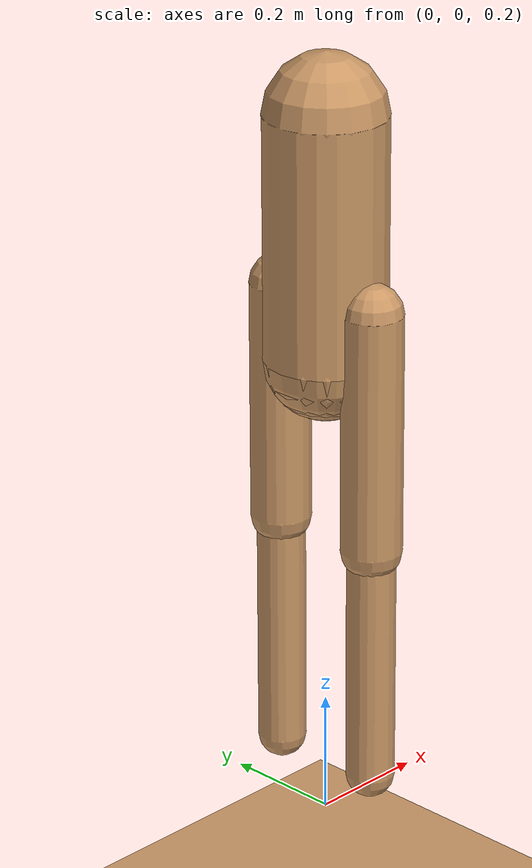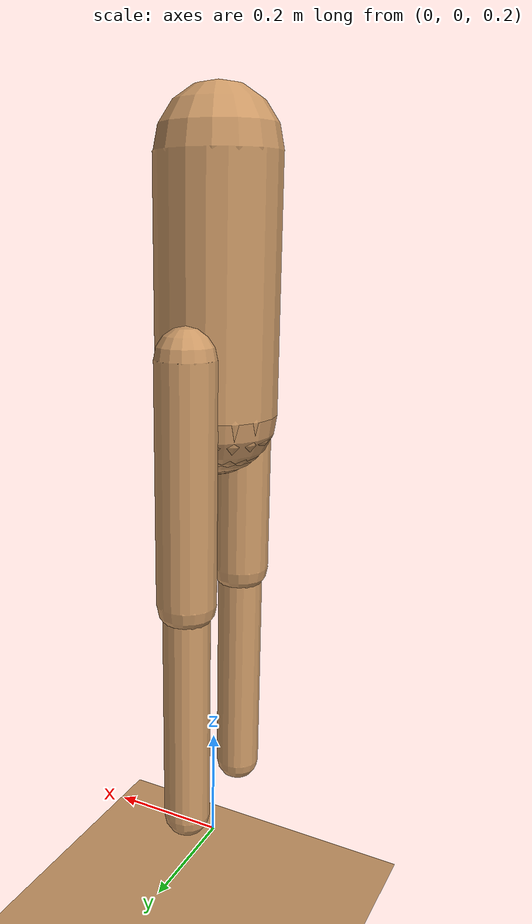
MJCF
<mujoco model="NeuralAtoms_75kg_Humanoid">
    <compiler angle="degree" coordinate="local" inertiafromgeom="true"/>
    <option integrator="RK4" timestep="0.01" gravity="0 0 -9.81"/>

    <default>
        <joint armature="1" damping="1" limited="true"/>
        <geom contype="1" conaffinity="1" condim="3" friction="0.5 0.1 0.1" rgba="0.8 0.6 0.4 1"/>
    </default>

    <asset>
        <texture name="texplane" type="2d" builtin="checker" rgb1=".2 .3 .4" rgb2=".1 .2 .3" width="512" height="512"/>
        <material name="matplane" texture="texplane" texrepeat="1 1" texuniform="true"/>
    </asset>

    <worldbody>
        <light directional="true" pos="0 0 10" dir="0 0 -1" diffuse="0.8 0.8 0.8"/>
        <geom name="floor" type="plane" size="0 0 .05" material="matplane"/>

        <body name="pelvis" pos="0 0 1.0">
            <freejoint name="root"/>
            <geom name="pelvis_geom" type="sphere" size="0.1" mass="10.0"/>

            <body name="torso" pos="0 0 0.2">
                <joint name="spine" type="ball" range="0 45"/>
                <geom name="torso_geom" type="capsule" size="0.1 0.2" mass="30.0"/>

                <!-- Arms and Head would go here -->
            </body>

            <body name="right_thigh" pos="0 -0.1 -0.1">
                <joint name="right_hip" type="ball" range="0 40"/>
                <geom name="right_thigh_geom" type="capsule" size="0.05 0.2" mass="10.0"/>
                <body name="right_shin" pos="0 0 -0.4">
                    <joint name="right_knee" type="hinge" pos="0 0 0.2" axis="0 1 0" range="0 150"/>
                    <geom name="right_shin_geom" type="capsule" size="0.04 0.2" mass="5.0"/>
                </body>
            </body>

            <body name="left_thigh" pos="0 0.1 -0.1">
                <joint name="left_hip" type="ball" range="0 40"/>
                <geom name="left_thigh_geom" type="capsule" size="0.05 0.2" mass="10.0"/>
                <body name="left_shin" pos="0 0 -0.4">
                    <joint name="left_knee" type="hinge" pos="0 0 0.2" axis="0 1 0" range="0 150"/>
                    <geom name="left_shin_geom" type="capsule" size="0.04 0.2" mass="5.0"/>
                </body>
            </body>
        </body>
    </worldbody>
</mujoco>
